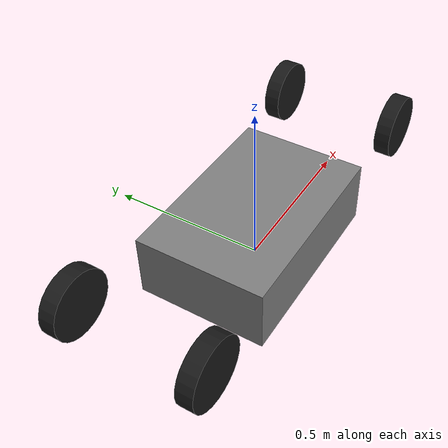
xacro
<?xml version="1.0"?>
<robot xmlns:xacro="http://www.ros.org/wiki/xacro" name="warehouse_robot">
    <!--   DEFINE PROPERTIES (VARIABLES)-->

    <!-- Robot Dimensions(meters) -->
    <xacro:property name="base_width" value="0.4"/> <!--40 cm wide-->
    <xacro:property name="base_length" value="0.6"/> <!--60 cm long-->
    <xacro:property name="base_height" value="0.2"/> <!--20 cm tall-->

    <!-- Wheel Dimensions-->
    <xacro:property name="wheel_radius" value="0.1"/> <!--10 cm radius-->
    <xacro:property name="wheel_width" value="0.05"/> <!-- 5 cm wide-->
    <xacro:property name="wheel_mass" value="0.5"/> <!--500 grams-->

    <xacro:property name="base_mass" value="5.0"/>

    <!-- MATERIALS (COLORS) -->
    <material name="blue">
        <color rgba="0.2 0.2 0.8 1.0"/>
    </material>
    <material name="black">
        <color rgba="0.1 0.1 0.1 1.0"/>
    </material>
    <material name="gray">
        <color rgba="0.5 0.5 0.5 1.0"/>
    </material>
    <material name="white">
        <color rgba="0.9 0.9 0.9 1.0"/>
    </material>

    <!-- ====== LINKS ======== -->
    <link name="base_link">
        <visual>
            <origin xyz="0 0 ${base_height/2}" rpy="0 0 0"/>
            <geometry>
                <box size="${base_length} ${base_width} ${base_height}"/>
            </geometry>
            <material name="gray" />
        </visual>
        <collision>
            <origin xyz="0 0 ${base_height/2}" rpy="0 0 0"/>
            <geometry>
                <box size="${base_length} ${base_width} ${base_height}"/>
            </geometry>
        </collision>
        <inertial>
            <origin xyz="0 0 ${base_height/2}" rpy="0 0 0"/>
            <mass value="${base_mass}"/>
            <inertia ixx="0.1" iyy="0.1" izz="0.1"
                    ixy="0.0" ixz="0.0" iyz="0.0"/>
        </inertial>

    </link>

    <!-- WHEEL MACRO AND LINK -->
    <xacro:macro name="wheel_link" params="name x y z">
        <link name="${name}">
            <visual>
            <origin xyz="${x} ${y} ${z}" rpy="1.5708 0 0"/>
            <geometry>
                <cylinder length="${wheel_width}" radius="${wheel_radius}"/>
            </geometry>
            <material name="black"/>
            </visual>

            <collision>
            <origin xyz="${x} ${y} ${z}" rpy="1.5708 0 0"/>
            <geometry>
                <cylinder length="${wheel_width}" radius="${wheel_radius}"/>
            </geometry>
            </collision>

            <inertial>
            <origin xyz="${x} ${y} ${z}" rpy="1.5708 0 0"/>
            <mass value="${wheel_mass}"/>
            <inertia ixx="0.01" iyy="0.01" izz="0.01"
                    ixy="0.0" ixz="0.0" iyz="0.0"/>
            </inertial>
        </link>
    </xacro:macro>

    <!--   WHEEL LINKS PLACED    -->
    <!-- Front Left Wheel -->
    <xacro:wheel_link name="wheel_front_left"
                    x="${base_length/2 - wheel_width/2}"
                    y="${base_width/2 - wheel_radius}"
                    z="${wheel_radius}"/>

    <!-- Front Right Wheel -->
    <xacro:wheel_link name="wheel_front_right"
                    x="${base_length/2 - wheel_width/2}"
                    y="${-base_width/2 + wheel_radius}"
                    z="${wheel_radius}"/>

    <!-- Rear Left Wheel -->
    <xacro:wheel_link name="wheel_rear_left"
                    x="${-base_length/2 + wheel_width/2}"
                    y="${base_width/2 - wheel_radius}"
                    z="${wheel_radius}"/>

    <!-- Rear Right Wheel -->
    <xacro:wheel_link name="wheel_rear_right"
                    x="${-base_length/2 + wheel_width/2}"
                    y="${-base_width/2 + wheel_radius}"
                    z="${wheel_radius}"/>

    <!--   JOINTS: WHEELS        -->

    <!-- Front Left -->
    <joint name="joint_front_left_wheel" type="continuous">
    <parent link="base_link"/>
    <child link="wheel_front_left"/>
    <origin xyz="${base_length/2 - wheel_width/2} ${base_width/2 - wheel_radius} ${wheel_radius}" rpy="0 0 0"/>
    <axis xyz="0 1 0"/>
    </joint>

    <!-- Front Right -->
    <joint name="joint_front_right_wheel" type="continuous">
    <parent link="base_link"/>
    <child link="wheel_front_right"/>
    <origin xyz="${base_length/2 - wheel_width/2} ${-base_width/2 + wheel_radius} ${wheel_radius}" rpy="0 0 0"/>
    <axis xyz="0 1 0"/>
    </joint>

    <!-- Rear Left -->
    <joint name="joint_rear_left_wheel" type="continuous">
    <parent link="base_link"/>
    <child link="wheel_rear_left"/>
    <origin xyz="${-base_length/2 + wheel_width/2} ${base_width/2 - wheel_radius} ${wheel_radius}" rpy="0 0 0"/>
    <axis xyz="0 1 0"/>
    </joint>

    <!-- Rear Right -->
    <joint name="joint_rear_right_wheel" type="continuous">
    <parent link="base_link"/>
    <child link="wheel_rear_right"/>
    <origin xyz="${-base_length/2 + wheel_width/2} ${-base_width/2 + wheel_radius} ${wheel_radius}" rpy="0 0 0"/>
    <axis xyz="0 1 0"/>
    </joint>

</robot>
